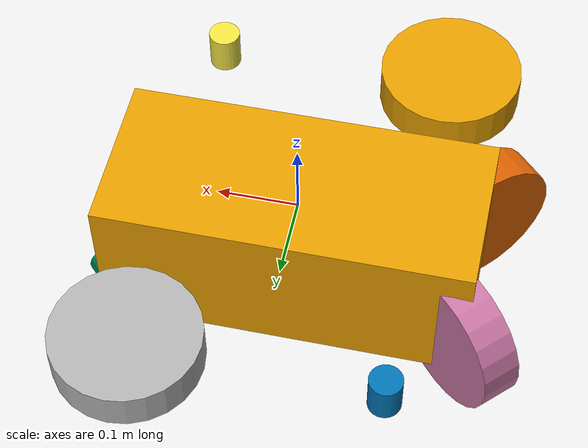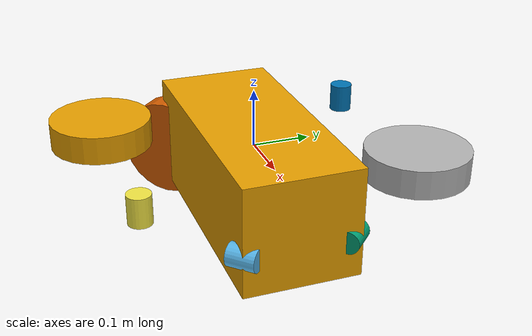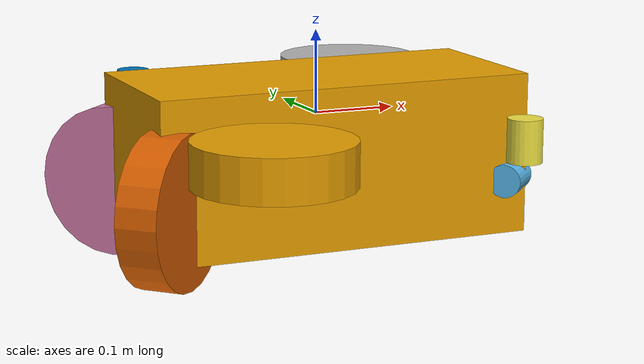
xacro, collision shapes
<?xml version="1.0"?>
<robot name="nemo_auv" xmlns:xacro="http://www.ros.org/wiki/xacro">

    <xacro:property name="ns" value="nemo_auv"/>
    <xacro:include filename="base_link.xacro"/>
    <xacro:include filename="robot_hydrodynamic.xacro"/>
    <xacro:include filename="thruster_cw.xacro"/>
    <xacro:include filename="thruster_ccw.xacro"/>

    <gazebo>
        <plugin filename="ignition-gazebo-joint-state-publisher-system" name="ignition::gazebo::systems::JointStatePublisher"/>

        <plugin
            filename="ignition-gazebo-odometry-publisher-system"
            name="ignition::gazebo::systems::OdometryPublisher">
            <odom_frame>world</odom_frame>
            <dimensions>3</dimensions>
            <robot_base_frame>base_link</robot_base_frame>
            <odom_publish_frequency>20</odom_publish_frequency>
        </plugin>

        <plugin
            filename="ignition-gazebo-pose-publisher-system"
            name="ignition::gazebo::systems::PosePublisher">
            <publish_link_pose>false</publish_link_pose>
            <publish_collision_pose>false</publish_collision_pose>
            <publish_visual_pose>false</publish_visual_pose>
            <publish_nested_model_pose>true</publish_nested_model_pose>
        </plugin>
        <plugin
        filename="ignition-gazebo-hydrodynamics-system"
        name="ignition::gazebo::systems::Hydrodynamics">
            <link_name>base_link</link_name>
            <water_density>1000.0</water_density>
            <!-- Added mass: -->
            <xDotU>0</xDotU>
            <yDotV>0</yDotV>
            <zDotW>0</zDotW>
            <kDotP>0</kDotP>
            <mDotQ>0</mDotQ>
            <nDotR>0</nDotR>
            <!-- First order stability derivative: -->
            <xU>0</xU>
            <yV>0</yV>
            <zW>0</zW>
            <kP>0</kP>
            <mQ>0</mQ>
            <nR>0</nR>
            <!-- Second order stability derivative: -->
            <xUabsU>-58.42</xUabsU>
            <yVabsV>-55.137</yVabsV>
            <zWabsW>-124.818</zWabsW>
            <kPabsP>-4.0</kPabsP>
            <mQabsQ>-4.0</mQabsQ>
            <nRabsR>-4.0</nRabsR>
        </plugin>
    </gazebo>
</robot>

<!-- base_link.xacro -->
<robot xmlns:xacro="http://www.ros.org/wiki/xacro" name="my_robot">

    <link name="base_link">
        <visual>
            <origin xyz="0.0 0.0 0.0" rpy="0.0 0.0 0.0"/>
            <geometry>
                <mesh filename="package://nemo_description/meshes/visual_base_link.dae"/>
            </geometry>
        </visual>
        <inertial>
            <mass value="17.655"/>
            <origin xyz = "0.0 0.0 -0.075" rpy = "0 0 0 "/>
            <inertia ixx="0.026" ixy="0.0" ixz="0.0"
                 iyy="0.047" iyz="0.0"
                 izz="0.052"/>
        </inertial>
        <collision>
            <origin xyz="0.0 0.0 -0.048" rpy="0.0 0.0 0.0"/>
            <geometry>
                <box size="0.460 0.2025 0.1920"/>
            </geometry>
        </collision>

    </link>
</robot>

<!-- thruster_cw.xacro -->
<robot xmlns:xacro="http://www.ros.org/wiki/xacro" name="nemo_auv">
    <xacro:macro name="thruster_cw" params="thruster_id origin_xyz origin_rpy">
        <link name="${ns}/thruster${thruster_id}">
            <visual>
                <geometry>
                    <mesh filename="package://nemo_description/meshes/cwp.dae" scale="1.0 1.0 1.0"/>
                </geometry>
            </visual>

            <inertial>
                <mass value="0.010685972005449422"/>
                <inertia ixx="4.709701538510022e-06" ixy="0.0" ixz="0.0" iyy="4.709701538508585e-06" iyz="0.0" izz="3.424149260721648e-06"/>
            </inertial>

            <collision>
                <origin xyz="0 0 0" rpy="0 0 0"/>

                <geometry>
                    <cylinder radius="0.02" length="0.05"/>
                </geometry>

            </collision>
        </link>

        <joint name="thruster${thruster_id}" type="continuous">
            <origin xyz="${origin_xyz}" rpy="${origin_rpy}" />
            <axis xyz="0 0 1" />
            <parent link="base_link" />
            <child link="${ns}/thruster${thruster_id}" />
            <limits effort="0.5" velocity="5.0"/>
        </joint>

        <gazebo>
            <plugin filename="ignition-gazebo-thruster-system" name="ignition::gazebo::systems::Thruster">
                <namespace>${ns}</namespace>
                <joint_name>thruster${thruster_id}</joint_name>
                <topic>thruster${thruster_id}/cmd</topic>
                <thrust_coefficient>0.011</thrust_coefficient>
                <fluid_density>1000</fluid_density>
                <propeller_diameter>0.090</propeller_diameter>
                <velocity_control>false</velocity_control>
                <use_angvel_cmd>true</use_angvel_cmd>
                <max_thrust_cmd>335</max_thrust_cmd>
                <min_thrust_cmd>-335</min_thrust_cmd>
            </plugin>
        </gazebo>
    </xacro:macro>

    <xacro:thruster_cw thruster_id="1" origin_xyz="0.21370 -0.09262 -0.07877" origin_rpy="0.000000 1.570796 0.785" />
    <xacro:thruster_cw thruster_id="2" origin_xyz="0.21370 0.09053 -0.07877" origin_rpy="0.000000 1.570796 -0.785" />
    <xacro:thruster_cw thruster_id="5" origin_xyz="0.14902 -0.23605 0.000123" origin_rpy="0.000000 0.000000 0.000000" />
    <xacro:thruster_cw thruster_id="8" origin_xyz="-0.15098 0.23395 0.000123" origin_rpy="0.000000 0.000000 0.000000" />

</robot>

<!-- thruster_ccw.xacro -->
<robot xmlns:xacro="http://www.ros.org/wiki/xacro" name="nemo_auv">
    <xacro:macro name="thruster_ccw" params="thruster_id xyz rpy">
        <link name="${ns}/thruster${thruster_id}">
            <visual>
                <geometry>
                    <mesh filename="package://nemo_description/meshes/ccwp.dae" scale="1.0 1.0 1.0"/>
                </geometry>
            </visual>

            <inertial>
                <mass value="0.010685972005449422"/>
                <inertia ixx="4.709701538510022e-06" ixy="0.0" ixz="0.0"
                         iyy="4.709701538508585e-06" iyz="0.0" izz="3.424149260721648e-06"/>
            </inertial>
            <collision>
                <origin xyz="0 0 0" rpy="0 0 0"/>

                <geometry>
                    <cylinder radius="0.09" length="0.05"/>
                </geometry>

            </collision>
        </link>
        <joint name="thruster${thruster_id}" type="continuous">
            <origin xyz="${xyz}" rpy="${rpy}"/>
            <axis xyz="0 0 -1" />
            <parent link="base_link" />
            <child link="${ns}/thruster${thruster_id}" />
            <limits effort="-1" velocity="-1"/>
        </joint>
        <gazebo>
            <plugin
                filename="ignition-gazebo-thruster-system"
                name="ignition::gazebo::systems::Thruster">
                <namespace>${ns}</namespace>
                <joint_name>thruster${thruster_id}</joint_name>
                <topic>thruster${thruster_id}/cmd</topic>
                <thrust_coefficient>0.011</thrust_coefficient>
                <fluid_density>1000</fluid_density>
                <propeller_diameter>0.090</propeller_diameter>
                <velocity_control>false</velocity_control>
                <use_angvel_cmd>True</use_angvel_cmd>
                <max_thrust_cmd>335</max_thrust_cmd>
                <min_thrust_cmd>-335</min_thrust_cmd>
            </plugin>
        </gazebo>
    </xacro:macro>
    <xacro:thruster_ccw thruster_id="3" xyz="-0.21566 -0.09262 -0.07878" rpy="0.000000 1.570796 2.356194"/>
    <xacro:thruster_ccw thruster_id="4" xyz="-0.21566 0.09053 -0.07878" rpy="0.000000 1.570796 -2.356194"/>
    <xacro:thruster_ccw thruster_id="6" xyz="0.14902 0.23395 0.000123" rpy="0.000000 0.000000 0.000000"/>
    <xacro:thruster_ccw thruster_id="7" xyz="-0.15098 -0.23605 0.000123" rpy="0.000000 0.000000 0.000000"/>

</robot>
